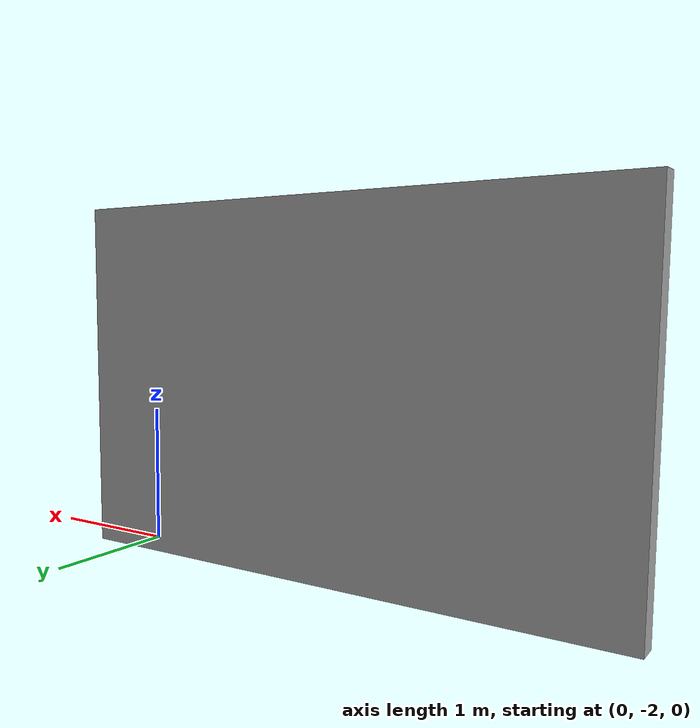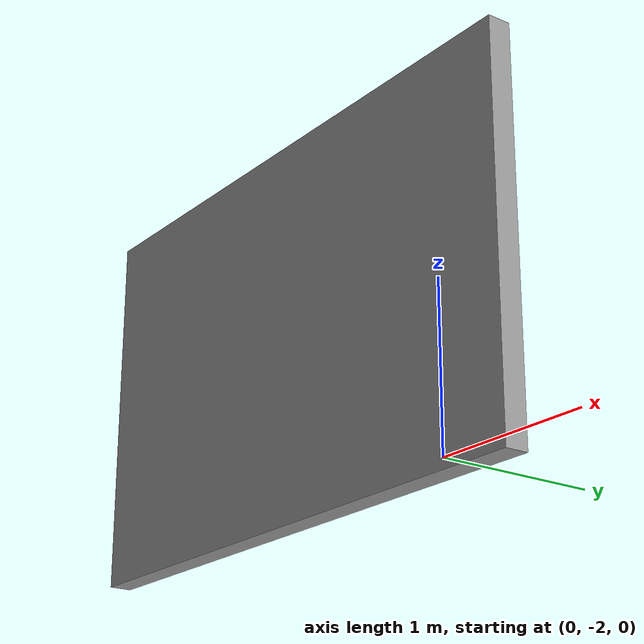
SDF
<?xml version='1.0'?>
<sdf version='1.6'>
  <model name='corridor2'>
    <pose frame=''>-1.675 -1.79 0 0 -0 0</pose>
    <link name='Wall_0'>
      <collision name='Wall_0_Collision'>
        <geometry>
          <box>
            <size>4 0.15 2.5</size>
          </box>
        </geometry>
        <pose frame=''>0 0 1.25 0 -0 0</pose>
      </collision>
      <visual name='Wall_0_Visual'>
        <pose frame=''>0 0 1.25 0 -0 0</pose>
        <geometry>
          <box>
            <size>4 0.15 2.5</size>
          </box>
        </geometry>
        <material>
          <script>
            <uri>file://media/materials/scripts/gazebo.material</uri>
            <name>Gazebo/Grey</name>
          </script>
          <ambient>1 1 1 1</ambient>
        </material>
        <meta>
          <layer>0</layer>
        </meta>
      </visual>
      <pose frame=''>0 0 0 0 -0 3.14159</pose>
    </link>
    <static>1</static>
  </model>
</sdf>
